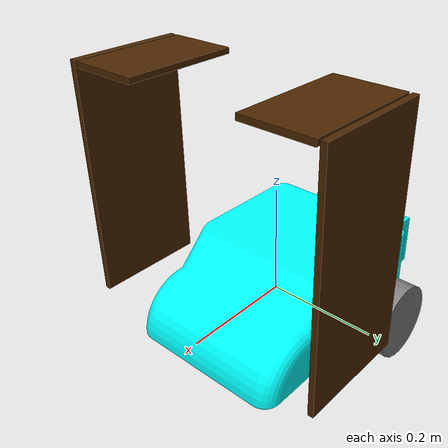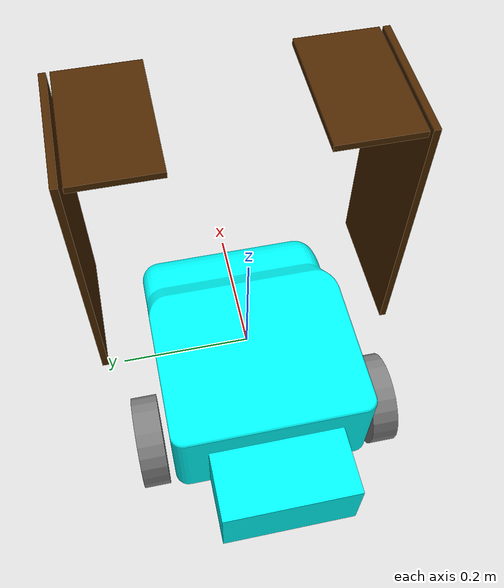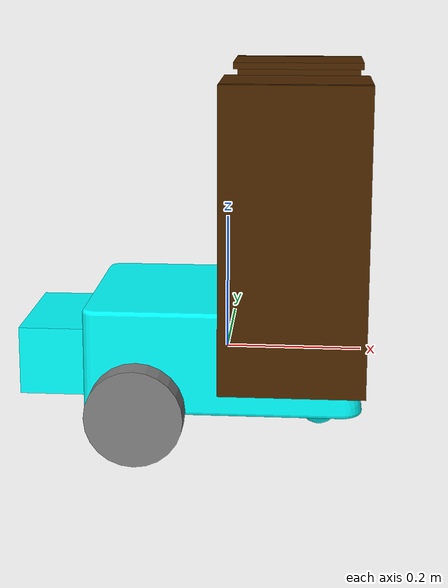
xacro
<?xml version="1.0"?>
<robot name="roballos"
  xmlns:xacro="http://ros.org/wiki/xacro">

  <xacro:include
    filename="$(find robot_description)/src/description/robot_parts/collector2/collector.xacro" />

  <xacro:include filename="$(find robot_description)/src/description/robot_parts/property.xacro" />
  <xacro:include filename="$(find robot_description)/src/description/robot_parts/base.xacro" />
  <xacro:include filename="$(find robot_description)/src/description/robot_parts/battery.xacro" />
  <xacro:include filename="$(find robot_description)/src/description/robot_parts/wheels.xacro" />
  <xacro:include filename="$(find robot_description)/src/description/robot_parts/caster_wheel.xacro" />
  <xacro:include filename="$(find robot_description)/src/description/robot_parts/control.xacro" />

  <xacro:base />
  <xacro:battery />
  <xacro:wheels />
  <xacro:caster_wheel />

  <xacro:collector />
  <xacro:control />

</robot>

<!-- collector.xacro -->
<robot name="collector"
    xmlns:xacro="http://ros.org/wiki/xacro">

    <xacro:include
        filename="$(find robot_description)/src/description/robot_parts/collector/segment.xacro" />

    <xacro:macro name="collector">

        <gazebo reference="segment_central">
            <visual>
                <material>
                    <ambient>1. 0.3 0.3 1.0</ambient>
                    <diffuse>1. 0.3 0.3 1.0</diffuse>
                    <specular>1. 0.3 0.3 1.0</specular>
                    <emissive>1. 0.3 0.3 1.0</emissive>
                </material>
            </visual>
        </gazebo>

        <link name="segment_central">
            <visual>
                <origin xyz="-0.21 0 0" rpy="0 0 0" />
                <geometry>
                    <box size="0.42 0.01 0.2" />
                </geometry>
                <material name="Brown">
                    <color rgba="0.30 0.15 0.0 1.0" />
                </material>
            </visual>
            <collision>
                <origin xyz="-0.21 0 0" rpy="0 0 0" />
                <geometry>
                    <box size="0.42 0.01 0.2" />
                </geometry>
            </collision>

            <xacro:box_inertia m="0.01" w="0.7" d="0.05" h="0.2" />
        </link>

        <joint name="segment_central_joint" type="revolute">
            <axis xyz="0 1 0" />
            <origin xyz="0.1 -0.23 0" rpy="${0 * pi} ${(-16/20) * pi} ${0 * pi}" />
            <parent link="base_link" />
            <child link="segment_central" />
            <limit effort="1000000.0" lower="${(-4/20) * pi}" upper="${(-24/20) * pi}" velocity="30" />
            <dynamics damping="0.0" friction="10.0" />
        </joint>

        <ros2_control name="GazeboSystem" type="system">
            <hardware>
                <plugin>gazebo_ros2_control/GazeboSystem</plugin>
            </hardware>

            <joint name="segment_central_joint">
                <command_interface name="velocity">
                    <param name="min">-0.10</param>
                    <param name="max">0.10</param>
                </command_interface>
                <state_interface name="position" />
                <state_interface name="velocity" />
                <state_interface name="effort" />
            </joint>
        </ros2_control>

        <gazebo>
            <plugin filename="libgazebo_ros2_control.so" name="gazebo_ros2_control">
                <parameters>$(find robot_description)/config/gripper_controller.yaml</parameters>

            </plugin>
        </gazebo>

        <gazebo reference="segment_g">
            <visual>
                <material>
                    <ambient>1. 0.3 0.3 1.0</ambient>
                    <diffuse>1. 0.3 0.3 1.0</diffuse>
                    <specular>1. 0.3 0.3 1.0</specular>
                    <emissive>1. 0.3 0.3 1.0</emissive>
                </material>
            </visual>
        </gazebo>

        <link name="segment_g">
            <visual>
                <geometry>
                    <box size="0.42 0.01 0.2" />
                </geometry>
                <material name="Brown">
                    <color rgba="0.30 0.15 0.0 1.0" />
                </material>
            </visual>
            <collision>
                <origin xyz="-0.21 0 0" rpy="0 0 0" />
                <geometry>
                    <box size="0.42 0.01 0.2" />
                </geometry>
            </collision>

            <xacro:box_inertia m="0.01" w="0.7" d="0.05" h="0.2" />
        </link>

        <joint name="segment_g_joint" type="fixed">
            <origin xyz="-0.21 0.46 0" rpy="${0 * pi} ${(0) * pi} ${0 * pi}" />
            <parent link="segment_central" />
            <child link="segment_g" />
        </joint>

        <gazebo reference="pince_d">
            <visual>
                <material>
                    <ambient>1. 0.3 0.3 1.0</ambient>
                    <diffuse>1. 0.3 0.3 1.0</diffuse>
                    <specular>1. 0.3 0.3 1.0</specular>
                    <emissive>1. 0.3 0.3 1.0</emissive>
                </material>
            </visual>
        </gazebo>

        <link name="pince_d">
            <visual>
                <geometry>
                    <box size="0.12 0.01 0.2" />
                </geometry>
                <material name="Brown">
                    <color rgba="0.30 0.15 0.0 1.0" />
                </material>
            </visual>
            <collision>
                <geometry>
                    <box size="0.12 0.01 0.2" />
                </geometry>
            </collision>

            <xacro:box_inertia m="0.01" w="0.7" d="0.05" h="0.2" />
        </link>

        <joint name="pince_d_joint" type="fixed">
            <origin xyz="-0.415 0.07 0" rpy="${0* pi} ${0* pi} ${(-1/2) * pi}" />
            <parent link="segment_central" />
            <child link="pince_d" />
        </joint>

        <gazebo reference="pince_g">
            <visual>
                <material>
                    <ambient>1. 0.3 0.3 1.0</ambient>
                    <diffuse>1. 0.3 0.3 1.0</diffuse>
                    <specular>1. 0.3 0.3 1.0</specular>
                    <emissive>1. 0.3 0.3 1.0</emissive>
                </material>
            </visual>
        </gazebo>

        <link name="pince_g">
            <visual>
                <geometry>
                    <box size="0.12 0.01 0.2" />
                </geometry>
                <material name="Brown">
                    <color rgba="0.30 0.15 0.0 1.0" />
                </material>
            </visual>
            <collision>
                <geometry>
                    <box size="0.12 0.01 0.2" />
                </geometry>
            </collision>

            <xacro:box_inertia m="0.01" w="0.7" d="0.05" h="0.2" />
        </link>

        <joint name="pince_g_joint" type="fixed">
            <origin xyz="-0.415 0.39 0" rpy="${0* pi} ${0* pi} ${(1/2) * pi}" />
            <parent link="segment_central" />
            <child link="pince_g" />
        </joint>

    </xacro:macro>

</robot>

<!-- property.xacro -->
<robot name="property"
    xmlns:xacro="http://ros.org/wiki/xacro">

    <!-- Define robot constants -->
    <xacro:property name="base_width" value="0.31" />
    <xacro:property name="base_length" value="0.42" />
    <xacro:property name="base_height" value="0.18" />

    <xacro:property name="wheel_radius" value="0.07" />
    <xacro:property name="wheel_width" value="0.04" />
    <xacro:property name="wheel_ygap" value="0.025" />
    <xacro:property name="wheel_zoff" value="0.05" />
    <xacro:property name="wheel_xoff" value="0.12" />

    <xacro:property name="caster_xoff" value="0.14" />

    <material name="corps">
        <color rgba="0.3 1. 0.3 1.0" />
    </material>

    <material name="reste">
        <color rgba="1. 0.3 0.3 1.0" />
    </material>

    <!-- Define some commonly used intertial properties  -->
    <xacro:macro name="box_inertia" params="m w h d">
        <inertial>
            <origin xyz="0 0 0" rpy="${pi/2} 0 ${pi/2}" />
            <mass value="${m}" />
            <inertia ixx="${(m/12) * (h*h + d*d)}" ixy="0.0" ixz="0.0" iyy="${(m/12) * (w*w + d*d)}"
                iyz="0.0" izz="${(m/12) * (w*w + h*h)}" />
        </inertial>
    </xacro:macro>

    <xacro:macro name="cylinder_inertia" params="m r h">
        <inertial>
            <origin xyz="0 0 0" rpy="${pi/2} 0 0" />
            <mass value="${m}" />
            <inertia ixx="${(m/12) * (3*r*r + h*h)}" ixy="0" ixz="0" iyy="${(m/12) * (3*r*r + h*h)}"
                iyz="0" izz="${(m/2) * (r*r)}" />
        </inertial>
    </xacro:macro>

    <xacro:macro name="sphere_inertia" params="m r">
        <inertial>
            <mass value="${m}" />
            <inertia ixx="${(2/5) * m * (r*r)}" ixy="0.0" ixz="0.0" iyy="${(2/5) * m * (r*r)}"
                iyz="0.0" izz="${(2/5) * m * (r*r)}" />
        </inertial>
    </xacro:macro>
</robot>

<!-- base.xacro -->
<robot name="base"
    xmlns:xacro="http://ros.org/wiki/xacro">

    <xacro:macro name="base">

        <!-- Robot Base -->
        <gazebo reference="base_link">
            <visual>
                <material>
                    <ambient>0.3 1. 0.3 1.0</ambient>
                    <diffuse>0.3 1. 0.3 1.0</diffuse>
                    <specular>0.3 1. 0.3 1.0</specular>
                    <emissive>0.3 1. 0.3 1.0</emissive>
                </material>

            </visual>
        </gazebo>
        <link name="base_link">
            <visual>
                <origin xyz="-0.2 -0.15 -0.06" rpy="${pi/2} 0 0" />
                <geometry>
                    <mesh
                        filename="$(find robot_description)/src/description/robot_parts/meshes/chassis_is.dae"
                        scale="0.001 0.001 0.001" />
                </geometry>
                <material name="Cyan">
                    <color rgba="0 1.0 1.0 1.0" />
                </material>
            </visual>

            <collision>
                <geometry>
                    <box size="${base_length} ${base_width} ${base_height}" />
                </geometry>
            </collision>

            <xacro:box_inertia m="15" w="${base_width}" d="${base_length}" h="${base_height}" />
        </link>

        <!-- Robot Footprint -->
        <link name="base_footprint">
            <xacro:box_inertia m="0" w="0" d="0" h="0" />
        </link>

        <joint name="base_joint" type="fixed">
            <parent link="base_link" />
            <child link="base_footprint" />
            <origin xyz="0.0 0.0 ${-(wheel_radius+wheel_zoff)}" rpy="0 0 0" />
        </joint>

    </xacro:macro>

</robot>

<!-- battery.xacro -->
<robot name="battery"
    xmlns:xacro="http://ros.org/wiki/xacro">

    <xacro:macro name="battery">

        <!--contrepoids-->
        <gazebo reference="battery">
            <visual>
                <material>
                    <ambient>0.3 1. 0.3 1.0</ambient>
                    <diffuse>0.3 1. 0.3 1.0</diffuse>
                    <specular>0.3 1. 0.3 1.0</specular>
                    <emissive>0.3 1. 0.3 1.0</emissive>
                </material>
            </visual>
        </gazebo>
        <link name="battery">
            <visual>
                <geometry>
                    <box size="0.1 0.2 0.1" />
                </geometry>
                <material name="Cyan">
                    <color rgba="0 1.0 1.0 1.0" />
                </material>
            </visual>

            <collision>
                <geometry>
                    <box size="0.1 0.2 0.1" />
                </geometry>
            </collision>
            <xacro:box_inertia m="5" w="0.1" d="0.2" h="0.1" />
        </link>

        <joint name="battery_joint" type="fixed">
            <parent link="base_link" />
            <child link="battery" />
            <origin xyz="-0.25 0. 0." rpy="0 0 0" />
        </joint>

    </xacro:macro>

</robot>

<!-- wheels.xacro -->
<robot name="wheels"
    xmlns:xacro="http://ros.org/wiki/xacro">

    <xacro:macro name="wheels">

        <!-- Wheels -->
        <gazebo reference="drivewhl_l_link">
            <visual>
                <material>
                    <ambient>0. 0. 0.0 1.0</ambient>
                    <diffuse>0. 0. 0.0 1.0</diffuse>
                    <specular>0. 0. 0.0 1.0</specular>
                    <emissive>0. 0. 0.0 1.0</emissive>
                </material>
            </visual>
        </gazebo>
        <gazebo reference="drivewhl_r_link">
            <visual>
                <material>
                    <ambient>0. 0. 0.0 1.0</ambient>
                    <diffuse>0. 0. 0.0 1.0</diffuse>
                    <specular>0. 0. 0.0 1.0</specular>
                    <emissive>0. 0. 0.0 1.0</emissive>
                </material>
            </visual>
        </gazebo>
        <xacro:macro name="wheel" params="prefix x_reflect y_reflect">
            <link name="${prefix}_link">
                <visual>
                    <origin xyz="0 0 0" rpy="${pi/2} 0 0" />
                    <geometry>
                        <cylinder radius="${wheel_radius}" length="${wheel_width}" />
                    </geometry>
                    <material name="Gray">
                        <color rgba="0.5 0.5 0.5 1.0" />
                    </material>
                </visual>

                <collision>
                    <origin xyz="0 0 0" rpy="${pi/2} 0 0" />
                    <geometry>
                        <cylinder radius="${wheel_radius}" length="${wheel_width}" />
                    </geometry>
                </collision>

                <xacro:cylinder_inertia m="0.5" r="${wheel_radius}" h="${wheel_width}" />
            </link>

            <joint name="${prefix}_joint" type="continuous">
                <parent link="base_link" />
                <child link="${prefix}_link" />
                <origin
                    xyz="${x_reflect*wheel_xoff} ${y_reflect*(base_width/2+wheel_ygap)} ${-wheel_zoff}"
                    rpy="0 0 0" />
                <axis xyz="0 1 0" />
            </joint>
        </xacro:macro>

        <xacro:wheel prefix="drivewhl_l" x_reflect="-1" y_reflect="1" />
        <xacro:wheel prefix="drivewhl_r" x_reflect="-1" y_reflect="-1" />

    </xacro:macro>

</robot>

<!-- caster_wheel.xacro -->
<robot name="caster_wheel"
    xmlns:xacro="http://ros.org/wiki/xacro">

    <xacro:macro name="caster_wheel">

        <gazebo reference="front_caster">
            <mu1>0</mu1>
            <mu2>0</mu2>
            <kp>500000.0</kp>
            <kd>10.0</kd>
            <minDepth>0.001</minDepth>
            <maxVel>0.1</maxVel>
            <visual>
                <material>
                    <ambient>0. 0. 0.0 1.0</ambient>
                    <diffuse>0. 0. 0.0 1.0</diffuse>
                    <specular>0. 0. 0.0 1.0</specular>
                    <emissive>0. 0. 0.0 1.0</emissive>
                </material>
            </visual>
        </gazebo>
        <link name="front_caster">
            <visual>
                <geometry>
                    <sphere radius="${(wheel_radius+wheel_zoff-(base_height/2))}" />
                </geometry>
                <material name="Cyan">
                    <color rgba="0 1.0 1.0 1.0" />
                </material>
            </visual>

            <collision>
                <origin xyz="0 0 0" rpy="0 0 0" />
                <geometry>
                    <sphere radius="${(wheel_radius+wheel_zoff-(base_height/2))}" />
                </geometry>
            </collision>

            <xacro:sphere_inertia m="0.5" r="${(wheel_radius+wheel_zoff-(base_height/2))}" />
        </link>

        <joint name="caster_joint" type="fixed">
            <parent link="base_link" />
            <child link="front_caster" />
            <origin xyz="${caster_xoff} 0.0 ${-(base_height/2)}" rpy="0 0 0" />
        </joint>

    </xacro:macro>

</robot>
